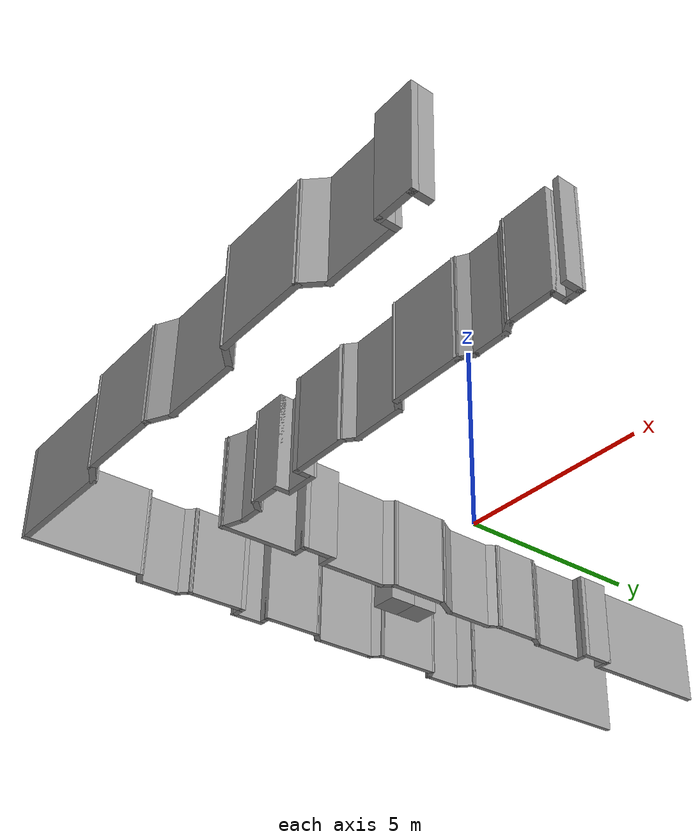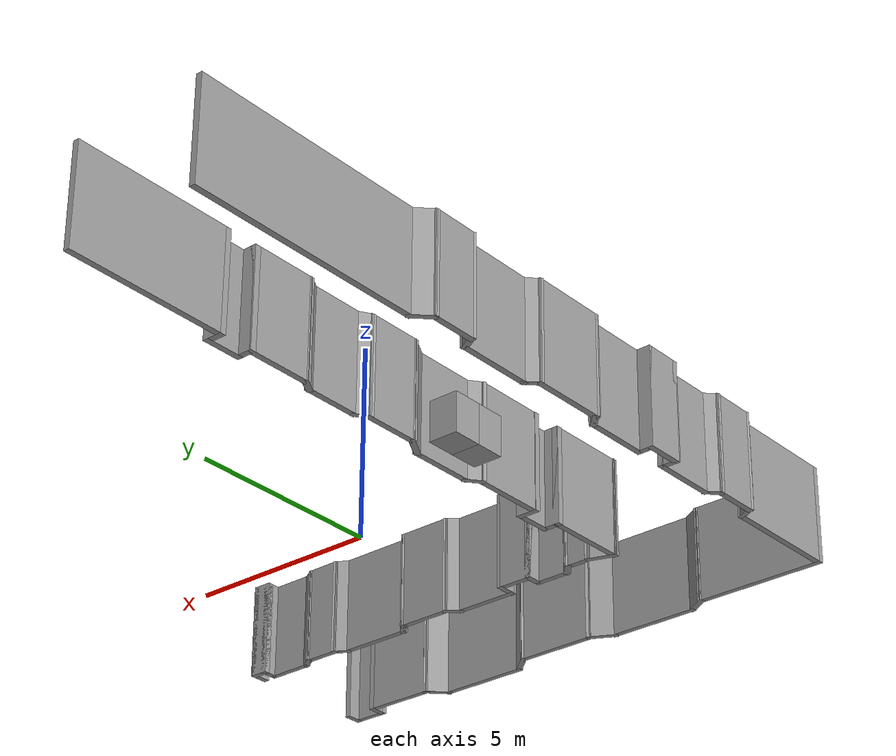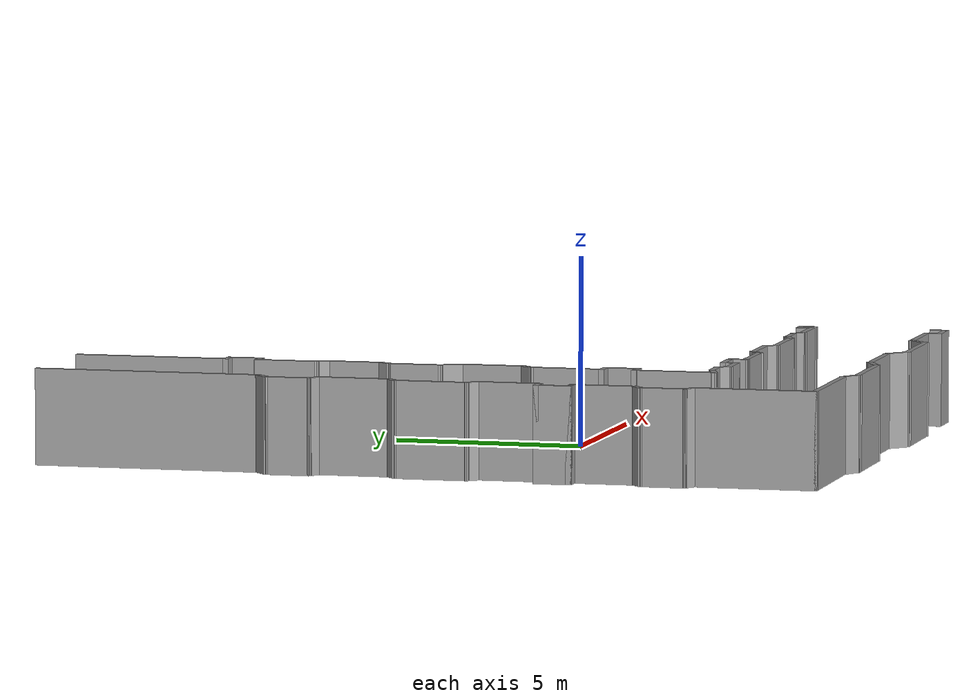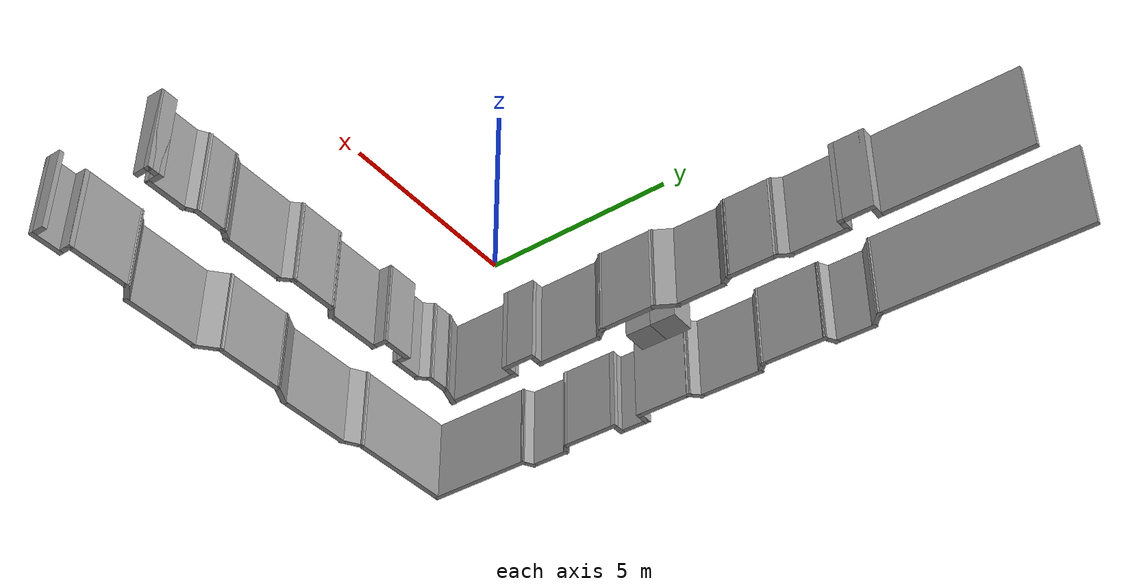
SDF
<?xml version='1.0'?>
<sdf version='1.6'>
  <model name='use_case1'>
    <pose frame=''>-0.101071 0.092078 0 0 -0 0</pose>
    <link name='Wall_11'>
      <collision name='Wall_11_Collision'>
        <geometry>
          <box>
            <size>0.5 0.15 2.5</size>
          </box>
        </geometry>
        <pose frame=''>0 0 1.25 0 -0 0</pose>
      </collision>
      <visual name='Wall_11_Visual'>
        <pose frame=''>0 0 1.25 0 -0 0</pose>
        <geometry>
          <box>
            <size>0.5 0.15 2.5</size>
          </box>
        </geometry>
        <material>
          <script>
            <uri>file://media/materials/scripts/gazebo.material</uri>
            <name>Gazebo/Grey</name>
          </script>
          <ambient>1 1 1 1</ambient>
        </material>
      </visual>
      <pose frame=''>7.6129 -4.52177 0 0 -0 1.5708</pose>
    </link>
    <link name='Wall_12'>
      <collision name='Wall_12_Collision'>
        <geometry>
          <box>
            <size>0.5 0.15 2.5</size>
          </box>
        </geometry>
        <pose frame=''>0 0 1.25 0 -0 0</pose>
      </collision>
      <visual name='Wall_12_Visual'>
        <pose frame=''>0 0 1.25 0 -0 0</pose>
        <geometry>
          <box>
            <size>0.5 0.15 2.5</size>
          </box>
        </geometry>
        <material>
          <script>
            <uri>file://media/materials/scripts/gazebo.material</uri>
            <name>Gazebo/Grey</name>
          </script>
          <ambient>1 1 1 1</ambient>
        </material>
      </visual>
      <pose frame=''>7.4379 -4.34677 0 0 -0 3.14159</pose>
    </link>
    <link name='Wall_13'>
      <collision name='Wall_13_Collision'>
        <geometry>
          <box>
            <size>0.5 0.15 2.5</size>
          </box>
        </geometry>
        <pose frame=''>0 0 1.25 0 -0 0</pose>
      </collision>
      <visual name='Wall_13_Visual'>
        <pose frame=''>0 0 1.25 0 -0 0</pose>
        <geometry>
          <box>
            <size>0.5 0.15 2.5</size>
          </box>
        </geometry>
        <material>
          <script>
            <uri>file://media/materials/scripts/gazebo.material</uri>
            <name>Gazebo/Grey</name>
          </script>
          <ambient>1 1 1 1</ambient>
        </material>
      </visual>
      <pose frame=''>7.2629 -4.52177 0 0 0 -1.5708</pose>
    </link>
    <link name='Wall_14'>
      <collision name='Wall_14_Collision'>
        <geometry>
          <box>
            <size>1.25 0.15 2.5</size>
          </box>
        </geometry>
        <pose frame=''>0 0 1.25 0 -0 0</pose>
      </collision>
      <visual name='Wall_14_Visual'>
        <pose frame=''>0 0 1.25 0 -0 0</pose>
        <geometry>
          <box>
            <size>1.25 0.15 2.5</size>
          </box>
        </geometry>
        <material>
          <script>
            <uri>file://media/materials/scripts/gazebo.material</uri>
            <name>Gazebo/Grey</name>
          </script>
          <ambient>1 1 1 1</ambient>
        </material>
      </visual>
      <pose frame=''>6.7129 -4.69677 0 0 -0 3.14159</pose>
    </link>
    <link name='Wall_15'>
      <collision name='Wall_15_Collision'>
        <geometry>
          <box>
            <size>0.5 0.15 2.5</size>
          </box>
        </geometry>
        <pose frame=''>0 0 1.25 0 -0 0</pose>
      </collision>
      <visual name='Wall_15_Visual'>
        <pose frame=''>0 0 1.25 0 -0 0</pose>
        <geometry>
          <box>
            <size>0.5 0.15 2.5</size>
          </box>
        </geometry>
        <material>
          <script>
            <uri>file://media/materials/scripts/gazebo.material</uri>
            <name>Gazebo/Grey</name>
          </script>
          <ambient>1 1 1 1</ambient>
        </material>
      </visual>
      <pose frame=''>6.01134 -4.60927 0 0 -0 2.61799</pose>
    </link>
    <link name='Wall_16'>
      <collision name='Wall_16_Collision'>
        <geometry>
          <box>
            <size>1 0.15 2.5</size>
          </box>
        </geometry>
        <pose frame=''>0 0 1.25 0 -0 0</pose>
      </collision>
      <visual name='Wall_16_Visual'>
        <pose frame=''>0 0 1.25 0 -0 0</pose>
        <geometry>
          <box>
            <size>1 0.15 2.5</size>
          </box>
        </geometry>
        <material>
          <script>
            <uri>file://media/materials/scripts/gazebo.material</uri>
            <name>Gazebo/Grey</name>
          </script>
          <ambient>1 1 1 1</ambient>
        </material>
      </visual>
      <pose frame=''>5.43479 -4.52177 0 0 -0 3.14159</pose>
    </link>
    <link name='Wall_17'>
      <collision name='Wall_17_Collision'>
        <geometry>
          <box>
            <size>0.5 0.15 2.5</size>
          </box>
        </geometry>
        <pose frame=''>0 0 1.25 0 -0 0</pose>
      </collision>
      <visual name='Wall_17_Visual'>
        <pose frame=''>0 0 1.25 0 -0 0</pose>
        <geometry>
          <box>
            <size>0.5 0.15 2.5</size>
          </box>
        </geometry>
        <material>
          <script>
            <uri>file://media/materials/scripts/gazebo.material</uri>
            <name>Gazebo/Grey</name>
          </script>
          <ambient>1 1 1 1</ambient>
        </material>
      </visual>
      <pose frame=''>4.85823 -4.60927 0 0 0 -2.61799</pose>
    </link>
    <link name='Wall_18'>
      <collision name='Wall_18_Collision'>
        <geometry>
          <box>
            <size>2 0.15 2.5</size>
          </box>
        </geometry>
        <pose frame=''>0 0 1.25 0 -0 0</pose>
      </collision>
      <visual name='Wall_18_Visual'>
        <pose frame=''>0 0 1.25 0 -0 0</pose>
        <geometry>
          <box>
            <size>2 0.15 2.5</size>
          </box>
        </geometry>
        <material>
          <script>
            <uri>file://media/materials/scripts/gazebo.material</uri>
            <name>Gazebo/Grey</name>
          </script>
          <ambient>1 1 1 1</ambient>
        </material>
      </visual>
      <pose frame=''>3.78168 -4.69677 0 0 -0 3.14159</pose>
    </link>
    <link name='Wall_19'>
      <collision name='Wall_19_Collision'>
        <geometry>
          <box>
            <size>0.5 0.15 2.5</size>
          </box>
        </geometry>
        <pose frame=''>0 0 1.25 0 -0 0</pose>
      </collision>
      <visual name='Wall_19_Visual'>
        <pose frame=''>0 0 1.25 0 -0 0</pose>
        <geometry>
          <box>
            <size>0.5 0.15 2.5</size>
          </box>
        </geometry>
        <material>
          <script>
            <uri>file://media/materials/scripts/gazebo.material</uri>
            <name>Gazebo/Grey</name>
          </script>
          <ambient>1 1 1 1</ambient>
        </material>
      </visual>
      <pose frame=''>2.73293 -4.57303 0 0 -0 2.35619</pose>
    </link>
    <link name='Wall_20'>
      <collision name='Wall_20_Collision'>
        <geometry>
          <box>
            <size>1.5 0.15 2.5</size>
          </box>
        </geometry>
        <pose frame=''>0 0 1.25 0 -0 0</pose>
      </collision>
      <visual name='Wall_20_Visual'>
        <pose frame=''>0 0 1.25 0 -0 0</pose>
        <geometry>
          <box>
            <size>1.5 0.15 2.5</size>
          </box>
        </geometry>
        <material>
          <script>
            <uri>file://media/materials/scripts/gazebo.material</uri>
            <name>Gazebo/Grey</name>
          </script>
          <ambient>1 1 1 1</ambient>
        </material>
      </visual>
      <pose frame=''>1.93419 -4.44928 0 0 -0 3.14159</pose>
    </link>
    <link name='Wall_21'>
      <collision name='Wall_21_Collision'>
        <geometry>
          <box>
            <size>0.522162 0.15 2.5</size>
          </box>
        </geometry>
        <pose frame=''>0 0 1.25 0 -0 0</pose>
      </collision>
      <visual name='Wall_21_Visual'>
        <pose frame=''>0 0 1.25 0 -0 0</pose>
        <geometry>
          <box>
            <size>0.522162 0.15 2.5</size>
          </box>
        </geometry>
        <material>
          <script>
            <uri>file://media/materials/scripts/gazebo.material</uri>
            <name>Gazebo/Grey</name>
          </script>
          <ambient>1 1 1 1</ambient>
        </material>
      </visual>
      <pose frame=''>1.11524 -4.5672 0 0 0 -2.45528</pose>
    </link>
    <link name='Wall_22'>
      <collision name='Wall_22_Collision'>
        <geometry>
          <box>
            <size>1.75 0.15 2.5</size>
          </box>
        </geometry>
        <pose frame=''>0 0 1.25 0 -0 0</pose>
      </collision>
      <visual name='Wall_22_Visual'>
        <pose frame=''>0 0 1.25 0 -0 0</pose>
        <geometry>
          <box>
            <size>1.75 0.15 2.5</size>
          </box>
        </geometry>
        <material>
          <script>
            <uri>file://media/materials/scripts/gazebo.material</uri>
            <name>Gazebo/Grey</name>
          </script>
          <ambient>1 1 1 1</ambient>
        </material>
      </visual>
      <pose frame=''>0.17129 -4.66991 0 0 -0 3.14159</pose>
    </link>
    <link name='Wall_23'>
      <collision name='Wall_23_Collision'>
        <geometry>
          <box>
            <size>0.561116 0.15 2.5</size>
          </box>
        </geometry>
        <pose frame=''>0 0 1.25 0 -0 0</pose>
      </collision>
      <visual name='Wall_23_Visual'>
        <pose frame=''>0 0 1.25 0 -0 0</pose>
        <geometry>
          <box>
            <size>0.561116 0.15 2.5</size>
          </box>
        </geometry>
        <material>
          <script>
            <uri>file://media/materials/scripts/gazebo.material</uri>
            <name>Gazebo/Grey</name>
          </script>
          <ambient>1 1 1 1</ambient>
        </material>
      </visual>
      <pose frame=''>-0.636314 -4.4797 0 0 -0 1.6078</pose>
    </link>
    <link name='Wall_24'>
      <collision name='Wall_24_Collision'>
        <geometry>
          <box>
            <size>1 0.15 2.5</size>
          </box>
        </geometry>
        <pose frame=''>0 0 1.25 0 -0 0</pose>
      </collision>
      <visual name='Wall_24_Visual'>
        <pose frame=''>0 0 1.25 0 -0 0</pose>
        <geometry>
          <box>
            <size>1 0.15 2.5</size>
          </box>
        </geometry>
        <material>
          <script>
            <uri>file://media/materials/scripts/gazebo.material</uri>
            <name>Gazebo/Grey</name>
          </script>
          <ambient>1 1 1 1</ambient>
        </material>
      </visual>
      <pose frame=''>-1.06892 -4.27428 0 0 -0 3.14159</pose>
    </link>
    <link name='Wall_25'>
      <collision name='Wall_25_Collision'>
        <geometry>
          <box>
            <size>0.5 0.15 2.5</size>
          </box>
        </geometry>
        <pose frame=''>0 0 1.25 0 -0 0</pose>
      </collision>
      <visual name='Wall_25_Visual'>
        <pose frame=''>0 0 1.25 0 -0 0</pose>
        <geometry>
          <box>
            <size>0.5 0.15 2.5</size>
          </box>
        </geometry>
        <material>
          <script>
            <uri>file://media/materials/scripts/gazebo.material</uri>
            <name>Gazebo/Grey</name>
          </script>
          <ambient>1 1 1 1</ambient>
        </material>
      </visual>
      <pose frame=''>-1.49392 -4.44928 0 0 0 -1.5708</pose>
    </link>
    <link name='Wall_26'>
      <collision name='Wall_26_Collision'>
        <geometry>
          <box>
            <size>1 0.15 2.5</size>
          </box>
        </geometry>
        <pose frame=''>0 0 1.25 0 -0 0</pose>
      </collision>
      <visual name='Wall_26_Visual'>
        <pose frame=''>0 0 1.25 0 -0 0</pose>
        <geometry>
          <box>
            <size>1 0.15 2.5</size>
          </box>
        </geometry>
        <material>
          <script>
            <uri>file://media/materials/scripts/gazebo.material</uri>
            <name>Gazebo/Grey</name>
          </script>
          <ambient>1 1 1 1</ambient>
        </material>
      </visual>
      <pose frame=''>-1.91892 -4.62428 0 0 -0 3.14159</pose>
    </link>
    <link name='Wall_27'>
      <collision name='Wall_27_Collision'>
        <geometry>
          <box>
            <size>0.5 0.15 2.5</size>
          </box>
        </geometry>
        <pose frame=''>0 0 1.25 0 -0 0</pose>
      </collision>
      <visual name='Wall_27_Visual'>
        <pose frame=''>0 0 1.25 0 -0 0</pose>
        <geometry>
          <box>
            <size>0.5 0.15 2.5</size>
          </box>
        </geometry>
        <material>
          <script>
            <uri>file://media/materials/scripts/gazebo.material</uri>
            <name>Gazebo/Grey</name>
          </script>
          <ambient>1 1 1 1</ambient>
        </material>
      </visual>
      <pose frame=''>-2.46766 -4.50054 0 0 -0 2.35619</pose>
    </link>
    <link name='Wall_28'>
      <collision name='Wall_28_Collision'>
        <geometry>
          <box>
            <size>0.75 0.15 2.5</size>
          </box>
        </geometry>
        <pose frame=''>0 0 1.25 0 -0 0</pose>
      </collision>
      <visual name='Wall_28_Visual'>
        <pose frame=''>0 0 1.25 0 -0 0</pose>
        <geometry>
          <box>
            <size>0.75 0.15 2.5</size>
          </box>
        </geometry>
        <material>
          <script>
            <uri>file://media/materials/scripts/gazebo.material</uri>
            <name>Gazebo/Grey</name>
          </script>
          <ambient>1 1 1 1</ambient>
        </material>
      </visual>
      <pose frame=''>-2.89141 -4.3768 0 0 -0 3.14159</pose>
    </link>
    <link name='Wall_29'>
      <collision name='Wall_29_Collision'>
        <geometry>
          <box>
            <size>0.783629 0.15 2.5</size>
          </box>
        </geometry>
        <pose frame=''>0 0 1.25 0 -0 0</pose>
      </collision>
      <visual name='Wall_29_Visual'>
        <pose frame=''>0 0 1.25 0 -0 0</pose>
        <geometry>
          <box>
            <size>0.783629 0.15 2.5</size>
          </box>
        </geometry>
        <material>
          <script>
            <uri>file://media/materials/scripts/gazebo.material</uri>
            <name>Gazebo/Grey</name>
          </script>
          <ambient>1 1 1 1</ambient>
        </material>
      </visual>
      <pose frame=''>-3.49211 -4.47654 0 0 0 -2.82132</pose>
    </link>
    <link name='Wall_30'>
      <collision name='Wall_30_Collision'>
        <geometry>
          <box>
            <size>0.15 0.15 2.5</size>
          </box>
        </geometry>
        <pose frame=''>0 0 1.25 0 -0 0</pose>
      </collision>
      <visual name='Wall_30_Visual'>
        <pose frame=''>0 0 1.25 0 -0 0</pose>
        <geometry>
          <box>
            <size>0.15 0.15 2.5</size>
          </box>
        </geometry>
        <material>
          <script>
            <uri>file://media/materials/scripts/gazebo.material</uri>
            <name>Gazebo/Grey</name>
          </script>
          <ambient>1 1 1 1</ambient>
        </material>
      </visual>
      <pose frame=''>-3.79282 -4.57628 0 0 -0 0</pose>
    </link>
    <link name='Wall_32'>
      <collision name='Wall_32_Collision'>
        <geometry>
          <box>
            <size>0.5 0.15 2.5</size>
          </box>
        </geometry>
        <pose frame=''>0 0 1.25 0 -0 0</pose>
      </collision>
      <visual name='Wall_32_Visual'>
        <pose frame=''>0 0 1.25 0 -0 0</pose>
        <geometry>
          <box>
            <size>0.5 0.15 2.5</size>
          </box>
        </geometry>
        <material>
          <script>
            <uri>file://media/materials/scripts/gazebo.material</uri>
            <name>Gazebo/Grey</name>
          </script>
          <ambient>1 1 1 1</ambient>
        </material>
      </visual>
      <pose frame=''>7.62781 -8.12233 0 0 0 -1.5708</pose>
    </link>
    <link name='Wall_33'>
      <collision name='Wall_33_Collision'>
        <geometry>
          <box>
            <size>1 0.15 2.5</size>
          </box>
        </geometry>
        <pose frame=''>0 0 1.25 0 -0 0</pose>
      </collision>
      <visual name='Wall_33_Visual'>
        <pose frame=''>0 0 1.25 0 -0 0</pose>
        <geometry>
          <box>
            <size>1 0.15 2.5</size>
          </box>
        </geometry>
        <material>
          <script>
            <uri>file://media/materials/scripts/gazebo.material</uri>
            <name>Gazebo/Grey</name>
          </script>
          <ambient>1 1 1 1</ambient>
        </material>
      </visual>
      <pose frame=''>7.20281 -8.29734 0 0 -0 3.14159</pose>
    </link>
    <link name='Wall_34'>
      <collision name='Wall_34_Collision'>
        <geometry>
          <box>
            <size>0.5 0.15 2.5</size>
          </box>
        </geometry>
        <pose frame=''>0 0 1.25 0 -0 0</pose>
      </collision>
      <visual name='Wall_34_Visual'>
        <pose frame=''>0 0 1.25 0 -0 0</pose>
        <geometry>
          <box>
            <size>0.5 0.15 2.5</size>
          </box>
        </geometry>
        <material>
          <script>
            <uri>file://media/materials/scripts/gazebo.material</uri>
            <name>Gazebo/Grey</name>
          </script>
          <ambient>1 1 1 1</ambient>
        </material>
      </visual>
      <pose frame=''>6.77781 -8.12233 0 0 -0 1.5708</pose>
    </link>
    <link name='Wall_35'>
      <collision name='Wall_35_Collision'>
        <geometry>
          <box>
            <size>2 0.15 2.5</size>
          </box>
        </geometry>
        <pose frame=''>0 0 1.25 0 -0 0</pose>
      </collision>
      <visual name='Wall_35_Visual'>
        <pose frame=''>0 0 1.25 0 -0 0</pose>
        <geometry>
          <box>
            <size>2 0.15 2.5</size>
          </box>
        </geometry>
        <material>
          <script>
            <uri>file://media/materials/scripts/gazebo.material</uri>
            <name>Gazebo/Grey</name>
          </script>
          <ambient>1 1 1 1</ambient>
        </material>
      </visual>
      <pose frame=''>5.85281 -7.94733 0 0 -0 3.14159</pose>
    </link>
    <link name='Wall_36'>
      <collision name='Wall_36_Collision'>
        <geometry>
          <box>
            <size>0.75 0.15 2.5</size>
          </box>
        </geometry>
        <pose frame=''>0 0 1.25 0 -0 0</pose>
      </collision>
      <visual name='Wall_36_Visual'>
        <pose frame=''>0 0 1.25 0 -0 0</pose>
        <geometry>
          <box>
            <size>0.75 0.15 2.5</size>
          </box>
        </geometry>
        <material>
          <script>
            <uri>file://media/materials/scripts/gazebo.material</uri>
            <name>Gazebo/Grey</name>
          </script>
          <ambient>1 1 1 1</ambient>
        </material>
      </visual>
      <pose frame=''>4.71568 -8.15947 0 0 0 -2.35619</pose>
    </link>
    <link name='Wall_37'>
      <collision name='Wall_37_Collision'>
        <geometry>
          <box>
            <size>2.5 0.15 2.5</size>
          </box>
        </geometry>
        <pose frame=''>0 0 1.25 0 -0 0</pose>
      </collision>
      <visual name='Wall_37_Visual'>
        <pose frame=''>0 0 1.25 0 -0 0</pose>
        <geometry>
          <box>
            <size>2.5 0.15 2.5</size>
          </box>
        </geometry>
        <material>
          <script>
            <uri>file://media/materials/scripts/gazebo.material</uri>
            <name>Gazebo/Grey</name>
          </script>
          <ambient>1 1 1 1</ambient>
        </material>
      </visual>
      <pose frame=''>3.32855 -8.3716 0 0 -0 3.14159</pose>
    </link>
    <link name='Wall_38'>
      <collision name='Wall_38_Collision'>
        <geometry>
          <box>
            <size>0.834433 0.15 2.5</size>
          </box>
        </geometry>
        <pose frame=''>0 0 1.25 0 -0 0</pose>
      </collision>
      <visual name='Wall_38_Visual'>
        <pose frame=''>0 0 1.25 0 -0 0</pose>
        <geometry>
          <box>
            <size>0.834433 0.15 2.5</size>
          </box>
        </geometry>
        <material>
          <script>
            <uri>file://media/materials/scripts/gazebo.material</uri>
            <name>Gazebo/Grey</name>
          </script>
          <ambient>1 1 1 1</ambient>
        </material>
      </visual>
      <pose frame=''>1.89374 -8.14886 0 0 -0 2.43287</pose>
    </link>
    <link name='Wall_39'>
      <collision name='Wall_39_Collision'>
        <geometry>
          <box>
            <size>2.25 0.15 2.5</size>
          </box>
        </geometry>
        <pose frame=''>0 0 1.25 0 -0 0</pose>
      </collision>
      <visual name='Wall_39_Visual'>
        <pose frame=''>0 0 1.25 0 -0 0</pose>
        <geometry>
          <box>
            <size>2.25 0.15 2.5</size>
          </box>
        </geometry>
        <material>
          <script>
            <uri>file://media/materials/scripts/gazebo.material</uri>
            <name>Gazebo/Grey</name>
          </script>
          <ambient>1 1 1 1</ambient>
        </material>
      </visual>
      <pose frame=''>0.583932 -7.93935 0 0 -0 3.14159</pose>
    </link>
    <link name='Wall_40'>
      <collision name='Wall_40_Collision'>
        <geometry>
          <box>
            <size>0.802951 0.15 2.5</size>
          </box>
        </geometry>
        <pose frame=''>0 0 1.25 0 -0 0</pose>
      </collision>
      <visual name='Wall_40_Visual'>
        <pose frame=''>0 0 1.25 0 -0 0</pose>
        <geometry>
          <box>
            <size>0.802951 0.15 2.5</size>
          </box>
        </geometry>
        <material>
          <script>
            <uri>file://media/materials/scripts/gazebo.material</uri>
            <name>Gazebo/Grey</name>
          </script>
          <ambient>1 1 1 1</ambient>
        </material>
      </visual>
      <pose frame=''>-0.755846 -8.07651 0 0 0 -2.66289</pose>
    </link>
    <link name='Wall_41'>
      <collision name='Wall_41_Collision'>
        <geometry>
          <box>
            <size>2.5 0.15 2.5</size>
          </box>
        </geometry>
        <pose frame=''>0 0 1.25 0 -0 0</pose>
      </collision>
      <visual name='Wall_41_Visual'>
        <pose frame=''>0 0 1.25 0 -0 0</pose>
        <geometry>
          <box>
            <size>2.5 0.15 2.5</size>
          </box>
        </geometry>
        <material>
          <script>
            <uri>file://media/materials/scripts/gazebo.material</uri>
            <name>Gazebo/Grey</name>
          </script>
          <ambient>1 1 1 1</ambient>
        </material>
      </visual>
      <pose frame=''>-2.22062 -8.22689 0 0 -0 3.14159</pose>
    </link>
    <link name='Wall_42'>
      <collision name='Wall_42_Collision'>
        <geometry>
          <box>
            <size>0.702509 0.15 2.5</size>
          </box>
        </geometry>
        <pose frame=''>0 0 1.25 0 -0 0</pose>
      </collision>
      <visual name='Wall_42_Visual'>
        <pose frame=''>0 0 1.25 0 -0 0</pose>
        <geometry>
          <box>
            <size>0.702509 0.15 2.5</size>
          </box>
        </geometry>
        <material>
          <script>
            <uri>file://media/materials/scripts/gazebo.material</uri>
            <name>Gazebo/Grey</name>
          </script>
          <ambient>1 1 1 1</ambient>
        </material>
      </visual>
      <pose frame=''>-3.63391 -8.08711 0 0 -0 2.61108</pose>
    </link>
    <link name='Wall_43'>
      <collision name='Wall_43_Collision'>
        <geometry>
          <box>
            <size>3.5 0.15 2.5</size>
          </box>
        </geometry>
        <pose frame=''>0 0 1.25 0 -0 0</pose>
      </collision>
      <visual name='Wall_43_Visual'>
        <pose frame=''>0 0 1.25 0 -0 0</pose>
        <geometry>
          <box>
            <size>3.5 0.15 2.5</size>
          </box>
        </geometry>
        <material>
          <script>
            <uri>file://media/materials/scripts/gazebo.material</uri>
            <name>Gazebo/Grey</name>
          </script>
          <ambient>1 1 1 1</ambient>
        </material>
      </visual>
      <pose frame=''>-5.54719 -7.94733 0 0 -0 3.14159</pose>
    </link>
    <link name='Wall_44'>
      <collision name='Wall_44_Collision'>
        <geometry>
          <box>
            <size>3.25 0.15 2.5</size>
          </box>
        </geometry>
        <pose frame=''>0 0 1.25 0 -0 0</pose>
      </collision>
      <visual name='Wall_44_Visual'>
        <pose frame=''>0 0 1.25 0 -0 0</pose>
        <geometry>
          <box>
            <size>3.25 0.15 2.5</size>
          </box>
        </geometry>
        <material>
          <script>
            <uri>file://media/materials/scripts/gazebo.material</uri>
            <name>Gazebo/Grey</name>
          </script>
          <ambient>1 1 1 1</ambient>
        </material>
      </visual>
      <pose frame=''>-7.22219 -6.39733 0 0 -0 1.5708</pose>
    </link>
    <link name='Wall_45'>
      <collision name='Wall_45_Collision'>
        <geometry>
          <box>
            <size>0.5 0.15 2.5</size>
          </box>
        </geometry>
        <pose frame=''>0 0 1.25 0 -0 0</pose>
      </collision>
      <visual name='Wall_45_Visual'>
        <pose frame=''>0 0 1.25 0 -0 0</pose>
        <geometry>
          <box>
            <size>0.5 0.15 2.5</size>
          </box>
        </geometry>
        <material>
          <script>
            <uri>file://media/materials/scripts/gazebo.material</uri>
            <name>Gazebo/Grey</name>
          </script>
          <ambient>1 1 1 1</ambient>
        </material>
      </visual>
      <pose frame=''>-7.37374 -4.75983 0 0 -0 2.61799</pose>
    </link>
    <link name='Wall_46'>
      <collision name='Wall_46_Collision'>
        <geometry>
          <box>
            <size>1.25 0.15 2.5</size>
          </box>
        </geometry>
        <pose frame=''>0 0 1.25 0 -0 0</pose>
      </collision>
      <visual name='Wall_46_Visual'>
        <pose frame=''>0 0 1.25 0 -0 0</pose>
        <geometry>
          <box>
            <size>1.25 0.15 2.5</size>
          </box>
        </geometry>
        <material>
          <script>
            <uri>file://media/materials/scripts/gazebo.material</uri>
            <name>Gazebo/Grey</name>
          </script>
          <ambient>1 1 1 1</ambient>
        </material>
      </visual>
      <pose frame=''>-7.5253 -4.12233 0 0 -0 1.5708</pose>
    </link>
    <link name='Wall_47'>
      <collision name='Wall_47_Collision'>
        <geometry>
          <box>
            <size>0.5 0.15 2.5</size>
          </box>
        </geometry>
        <pose frame=''>0 0 1.25 0 -0 0</pose>
      </collision>
      <visual name='Wall_47_Visual'>
        <pose frame=''>0 0 1.25 0 -0 0</pose>
        <geometry>
          <box>
            <size>0.5 0.15 2.5</size>
          </box>
        </geometry>
        <material>
          <script>
            <uri>file://media/materials/scripts/gazebo.material</uri>
            <name>Gazebo/Grey</name>
          </script>
          <ambient>1 1 1 1</ambient>
        </material>
      </visual>
      <pose frame=''>-7.40155 -3.44859 0 0 -0 0.785398</pose>
    </link>
    <link name='Wall_48'>
      <collision name='Wall_48_Collision'>
        <geometry>
          <box>
            <size>1.75 0.15 2.5</size>
          </box>
        </geometry>
        <pose frame=''>0 0 1.25 0 -0 0</pose>
      </collision>
      <visual name='Wall_48_Visual'>
        <pose frame=''>0 0 1.25 0 -0 0</pose>
        <geometry>
          <box>
            <size>1.75 0.15 2.5</size>
          </box>
        </geometry>
        <material>
          <script>
            <uri>file://media/materials/scripts/gazebo.material</uri>
            <name>Gazebo/Grey</name>
          </script>
          <ambient>1 1 1 1</ambient>
        </material>
      </visual>
      <pose frame=''>-7.27781 -2.52485 0 0 -0 1.5708</pose>
    </link>
    <link name='Wall_49'>
      <collision name='Wall_49_Collision'>
        <geometry>
          <box>
            <size>0.5 0.15 2.5</size>
          </box>
        </geometry>
        <pose frame=''>0 0 1.25 0 -0 0</pose>
      </collision>
      <visual name='Wall_49_Visual'>
        <pose frame=''>0 0 1.25 0 -0 0</pose>
        <geometry>
          <box>
            <size>0.5 0.15 2.5</size>
          </box>
        </geometry>
        <material>
          <script>
            <uri>file://media/materials/scripts/gazebo.material</uri>
            <name>Gazebo/Grey</name>
          </script>
          <ambient>1 1 1 1</ambient>
        </material>
      </visual>
      <pose frame=''>-7.45281 -1.72485 0 0 -0 3.14159</pose>
    </link>
    <link name='Wall_51'>
      <collision name='Wall_51_Collision'>
        <geometry>
          <box>
            <size>1 0.15 2.5</size>
          </box>
        </geometry>
        <pose frame=''>0 0 1.25 0 -0 0</pose>
      </collision>
      <visual name='Wall_51_Visual'>
        <pose frame=''>0 0 1.25 0 -0 0</pose>
        <geometry>
          <box>
            <size>1 0.15 2.5</size>
          </box>
        </geometry>
        <material>
          <script>
            <uri>file://media/materials/scripts/gazebo.material</uri>
            <name>Gazebo/Grey</name>
          </script>
          <ambient>1 1 1 1</ambient>
        </material>
      </visual>
      <pose frame=''>-7.62781 -1.29985 0 0 -0 1.5708</pose>
    </link>
    <link name='Wall_52'>
      <collision name='Wall_52_Collision'>
        <geometry>
          <box>
            <size>0.5 0.15 2.5</size>
          </box>
        </geometry>
        <pose frame=''>0 0 1.25 0 -0 0</pose>
      </collision>
      <visual name='Wall_52_Visual'>
        <pose frame=''>0 0 1.25 0 -0 0</pose>
        <geometry>
          <box>
            <size>0.5 0.15 2.5</size>
          </box>
        </geometry>
        <material>
          <script>
            <uri>file://media/materials/scripts/gazebo.material</uri>
            <name>Gazebo/Grey</name>
          </script>
          <ambient>1 1 1 1</ambient>
        </material>
      </visual>
      <pose frame=''>-7.45281 -0.874848 0 0 -0 0</pose>
    </link>
    <link name='Wall_53'>
      <collision name='Wall_53_Collision'>
        <geometry>
          <box>
            <size>1.75 0.15 2.5</size>
          </box>
        </geometry>
        <pose frame=''>0 0 1.25 0 -0 0</pose>
      </collision>
      <visual name='Wall_53_Visual'>
        <pose frame=''>0 0 1.25 0 -0 0</pose>
        <geometry>
          <box>
            <size>1.75 0.15 2.5</size>
          </box>
        </geometry>
        <material>
          <script>
            <uri>file://media/materials/scripts/gazebo.material</uri>
            <name>Gazebo/Grey</name>
          </script>
          <ambient>1 1 1 1</ambient>
        </material>
      </visual>
      <pose frame=''>-7.27781 -0.074848 0 0 -0 1.5708</pose>
    </link>
    <link name='Wall_54'>
      <collision name='Wall_54_Collision'>
        <geometry>
          <box>
            <size>0.5 0.15 2.5</size>
          </box>
        </geometry>
        <pose frame=''>0 0 1.25 0 -0 0</pose>
      </collision>
      <visual name='Wall_54_Visual'>
        <pose frame=''>0 0 1.25 0 -0 0</pose>
        <geometry>
          <box>
            <size>0.5 0.15 2.5</size>
          </box>
        </geometry>
        <material>
          <script>
            <uri>file://media/materials/scripts/gazebo.material</uri>
            <name>Gazebo/Grey</name>
          </script>
          <ambient>1 1 1 1</ambient>
        </material>
      </visual>
      <pose frame=''>-7.40155 0.848896 0 0 -0 2.35619</pose>
    </link>
    <link name='Wall_55'>
      <collision name='Wall_55_Collision'>
        <geometry>
          <box>
            <size>2 0.15 2.5</size>
          </box>
        </geometry>
        <pose frame=''>0 0 1.25 0 -0 0</pose>
      </collision>
      <visual name='Wall_55_Visual'>
        <pose frame=''>0 0 1.25 0 -0 0</pose>
        <geometry>
          <box>
            <size>2 0.15 2.5</size>
          </box>
        </geometry>
        <material>
          <script>
            <uri>file://media/materials/scripts/gazebo.material</uri>
            <name>Gazebo/Grey</name>
          </script>
          <ambient>1 1 1 1</ambient>
        </material>
      </visual>
      <pose frame=''>-7.5253 1.89764 0 0 -0 1.5708</pose>
    </link>
    <link name='Wall_56'>
      <collision name='Wall_56_Collision'>
        <geometry>
          <box>
            <size>0.5 0.15 2.5</size>
          </box>
        </geometry>
        <pose frame=''>0 0 1.25 0 -0 0</pose>
      </collision>
      <visual name='Wall_56_Visual'>
        <pose frame=''>0 0 1.25 0 -0 0</pose>
        <geometry>
          <box>
            <size>0.5 0.15 2.5</size>
          </box>
        </geometry>
        <material>
          <script>
            <uri>file://media/materials/scripts/gazebo.material</uri>
            <name>Gazebo/Grey</name>
          </script>
          <ambient>1 1 1 1</ambient>
        </material>
      </visual>
      <pose frame=''>-7.40155 2.94638 0 0 -0 0.785398</pose>
    </link>
    <link name='Wall_57'>
      <collision name='Wall_57_Collision'>
        <geometry>
          <box>
            <size>2 0.15 2.5</size>
          </box>
        </geometry>
        <pose frame=''>0 0 1.25 0 -0 0</pose>
      </collision>
      <visual name='Wall_57_Visual'>
        <pose frame=''>0 0 1.25 0 -0 0</pose>
        <geometry>
          <box>
            <size>2 0.15 2.5</size>
          </box>
        </geometry>
        <material>
          <script>
            <uri>file://media/materials/scripts/gazebo.material</uri>
            <name>Gazebo/Grey</name>
          </script>
          <ambient>1 1 1 1</ambient>
        </material>
      </visual>
      <pose frame=''>-7.27781 3.99513 0 0 -0 1.5708</pose>
    </link>
    <link name='Wall_58'>
      <collision name='Wall_58_Collision'>
        <geometry>
          <box>
            <size>0.5 0.15 2.5</size>
          </box>
        </geometry>
        <pose frame=''>0 0 1.25 0 -0 0</pose>
      </collision>
      <visual name='Wall_58_Visual'>
        <pose frame=''>0 0 1.25 0 -0 0</pose>
        <geometry>
          <box>
            <size>0.5 0.15 2.5</size>
          </box>
        </geometry>
        <material>
          <script>
            <uri>file://media/materials/scripts/gazebo.material</uri>
            <name>Gazebo/Grey</name>
          </script>
          <ambient>1 1 1 1</ambient>
        </material>
      </visual>
      <pose frame=''>-7.42936 5.00763 0 0 -0 2.61799</pose>
    </link>
    <link name='Wall_59'>
      <collision name='Wall_59_Collision'>
        <geometry>
          <box>
            <size>1.25 0.15 2.5</size>
          </box>
        </geometry>
        <pose frame=''>0 0 1.25 0 -0 0</pose>
      </collision>
      <visual name='Wall_59_Visual'>
        <pose frame=''>0 0 1.25 0 -0 0</pose>
        <geometry>
          <box>
            <size>1.25 0.15 2.5</size>
          </box>
        </geometry>
        <material>
          <script>
            <uri>file://media/materials/scripts/gazebo.material</uri>
            <name>Gazebo/Grey</name>
          </script>
          <ambient>1 1 1 1</ambient>
        </material>
      </visual>
      <pose frame=''>-7.58092 5.64513 0 0 -0 1.5708</pose>
    </link>
    <link name='Wall_60'>
      <collision name='Wall_60_Collision'>
        <geometry>
          <box>
            <size>0.656479 0.15 2.5</size>
          </box>
        </geometry>
        <pose frame=''>0 0 1.25 0 -0 0</pose>
      </collision>
      <visual name='Wall_60_Visual'>
        <pose frame=''>0 0 1.25 0 -0 0</pose>
        <geometry>
          <box>
            <size>0.656479 0.15 2.5</size>
          </box>
        </geometry>
        <material>
          <script>
            <uri>file://media/materials/scripts/gazebo.material</uri>
            <name>Gazebo/Grey</name>
          </script>
          <ambient>1 1 1 1</ambient>
        </material>
      </visual>
      <pose frame=''>-7.40155 6.3739 0 0 -0 0.783733</pose>
    </link>
    <link name='Wall_61'>
      <collision name='Wall_61_Collision'>
        <geometry>
          <box>
            <size>6 0.15 2.5</size>
          </box>
        </geometry>
        <pose frame=''>0 0 1.25 0 -0 0</pose>
      </collision>
      <visual name='Wall_61_Visual'>
        <pose frame=''>0 0 1.25 0 -0 0</pose>
        <geometry>
          <box>
            <size>6 0.15 2.5</size>
          </box>
        </geometry>
        <material>
          <script>
            <uri>file://media/materials/scripts/gazebo.material</uri>
            <name>Gazebo/Grey</name>
          </script>
          <ambient>1 1 1 1</ambient>
        </material>
      </visual>
      <pose frame=''>-7.22219 9.47767 0 0 -0 1.5708</pose>
    </link>
    <link name='Wall_63'>
      <collision name='Wall_63_Collision'>
        <geometry>
          <box>
            <size>0.5 0.15 2.5</size>
          </box>
        </geometry>
        <pose frame=''>0 0 1.25 0 -0 0</pose>
      </collision>
      <visual name='Wall_63_Visual'>
        <pose frame=''>0 0 1.25 0 -0 0</pose>
        <geometry>
          <box>
            <size>0.5 0.15 2.5</size>
          </box>
        </geometry>
        <material>
          <script>
            <uri>file://media/materials/scripts/gazebo.material</uri>
            <name>Gazebo/Grey</name>
          </script>
          <ambient>1 1 1 1</ambient>
        </material>
      </visual>
      <pose frame=''>-3.69719 8.40267 0 0 -0 0</pose>
    </link>
    <link name='Wall_64'>
      <collision name='Wall_64_Collision'>
        <geometry>
          <box>
            <size>1 0.15 2.5</size>
          </box>
        </geometry>
        <pose frame=''>0 0 1.25 0 -0 0</pose>
      </collision>
      <visual name='Wall_64_Visual'>
        <pose frame=''>0 0 1.25 0 -0 0</pose>
        <geometry>
          <box>
            <size>1 0.15 2.5</size>
          </box>
        </geometry>
        <material>
          <script>
            <uri>file://media/materials/scripts/gazebo.material</uri>
            <name>Gazebo/Grey</name>
          </script>
          <ambient>1 1 1 1</ambient>
        </material>
      </visual>
      <pose frame=''>-3.52219 7.97766 0 0 0 -1.5708</pose>
    </link>
    <link name='Wall_65'>
      <collision name='Wall_65_Collision'>
        <geometry>
          <box>
            <size>0.5 0.15 2.5</size>
          </box>
        </geometry>
        <pose frame=''>0 0 1.25 0 -0 0</pose>
      </collision>
      <visual name='Wall_65_Visual'>
        <pose frame=''>0 0 1.25 0 -0 0</pose>
        <geometry>
          <box>
            <size>0.5 0.15 2.5</size>
          </box>
        </geometry>
        <material>
          <script>
            <uri>file://media/materials/scripts/gazebo.material</uri>
            <name>Gazebo/Grey</name>
          </script>
          <ambient>1 1 1 1</ambient>
        </material>
      </visual>
      <pose frame=''>-3.69719 7.55267 0 0 -0 3.14159</pose>
    </link>
    <link name='Wall_66'>
      <collision name='Wall_66_Collision'>
        <geometry>
          <box>
            <size>1.75 0.15 2.5</size>
          </box>
        </geometry>
        <pose frame=''>0 0 1.25 0 -0 0</pose>
      </collision>
      <visual name='Wall_66_Visual'>
        <pose frame=''>0 0 1.25 0 -0 0</pose>
        <geometry>
          <box>
            <size>1.75 0.15 2.5</size>
          </box>
        </geometry>
        <material>
          <script>
            <uri>file://media/materials/scripts/gazebo.material</uri>
            <name>Gazebo/Grey</name>
          </script>
          <ambient>1 1 1 1</ambient>
        </material>
      </visual>
      <pose frame=''>-3.87219 6.75267 0 0 0 -1.5708</pose>
    </link>
    <link name='Wall_67'>
      <collision name='Wall_67_Collision'>
        <geometry>
          <box>
            <size>0.5 0.15 2.5</size>
          </box>
        </geometry>
        <pose frame=''>0 0 1.25 0 -0 0</pose>
      </collision>
      <visual name='Wall_67_Visual'>
        <pose frame=''>0 0 1.25 0 -0 0</pose>
        <geometry>
          <box>
            <size>0.5 0.15 2.5</size>
          </box>
        </geometry>
        <material>
          <script>
            <uri>file://media/materials/scripts/gazebo.material</uri>
            <name>Gazebo/Grey</name>
          </script>
          <ambient>1 1 1 1</ambient>
        </material>
      </visual>
      <pose frame=''>-3.78469 5.80111 0 0 0 -1.0472</pose>
    </link>
    <link name='Wall_68'>
      <collision name='Wall_68_Collision'>
        <geometry>
          <box>
            <size>1.5 0.15 2.5</size>
          </box>
        </geometry>
        <pose frame=''>0 0 1.25 0 -0 0</pose>
      </collision>
      <visual name='Wall_68_Visual'>
        <pose frame=''>0 0 1.25 0 -0 0</pose>
        <geometry>
          <box>
            <size>1.5 0.15 2.5</size>
          </box>
        </geometry>
        <material>
          <script>
            <uri>file://media/materials/scripts/gazebo.material</uri>
            <name>Gazebo/Grey</name>
          </script>
          <ambient>1 1 1 1</ambient>
        </material>
      </visual>
      <pose frame=''>-3.69719 4.97456 0 0 0 -1.5708</pose>
    </link>
    <link name='Wall_69'>
      <collision name='Wall_69_Collision'>
        <geometry>
          <box>
            <size>0.5 0.15 2.5</size>
          </box>
        </geometry>
        <pose frame=''>0 0 1.25 0 -0 0</pose>
      </collision>
      <visual name='Wall_69_Visual'>
        <pose frame=''>0 0 1.25 0 -0 0</pose>
        <geometry>
          <box>
            <size>0.5 0.15 2.5</size>
          </box>
        </geometry>
        <material>
          <script>
            <uri>file://media/materials/scripts/gazebo.material</uri>
            <name>Gazebo/Grey</name>
          </script>
          <ambient>1 1 1 1</ambient>
        </material>
      </visual>
      <pose frame=''>-3.78469 4.148 0 0 0 -2.0944</pose>
    </link>
    <link name='Wall_70'>
      <collision name='Wall_70_Collision'>
        <geometry>
          <box>
            <size>1.5 0.15 2.5</size>
          </box>
        </geometry>
        <pose frame=''>0 0 1.25 0 -0 0</pose>
      </collision>
      <visual name='Wall_70_Visual'>
        <pose frame=''>0 0 1.25 0 -0 0</pose>
        <geometry>
          <box>
            <size>1.5 0.15 2.5</size>
          </box>
        </geometry>
        <material>
          <script>
            <uri>file://media/materials/scripts/gazebo.material</uri>
            <name>Gazebo/Grey</name>
          </script>
          <ambient>1 1 1 1</ambient>
        </material>
      </visual>
      <pose frame=''>-3.87219 3.32145 0 0 0 -1.5708</pose>
    </link>
    <link name='Wall_71'>
      <collision name='Wall_71_Collision'>
        <geometry>
          <box>
            <size>0.75 0.15 2.5</size>
          </box>
        </geometry>
        <pose frame=''>0 0 1.25 0 -0 0</pose>
      </collision>
      <visual name='Wall_71_Visual'>
        <pose frame=''>0 0 1.25 0 -0 0</pose>
        <geometry>
          <box>
            <size>0.75 0.15 2.5</size>
          </box>
        </geometry>
        <material>
          <script>
            <uri>file://media/materials/scripts/gazebo.material</uri>
            <name>Gazebo/Grey</name>
          </script>
          <ambient>1 1 1 1</ambient>
        </material>
      </visual>
      <pose frame=''>-3.72219 2.38664 0 0 0 -1.0472</pose>
    </link>
    <link name='Wall_72'>
      <collision name='Wall_72_Collision'>
        <geometry>
          <box>
            <size>1.75 0.15 2.5</size>
          </box>
        </geometry>
        <pose frame=''>0 0 1.25 0 -0 0</pose>
      </collision>
      <visual name='Wall_72_Visual'>
        <pose frame=''>0 0 1.25 0 -0 0</pose>
        <geometry>
          <box>
            <size>1.75 0.15 2.5</size>
          </box>
        </geometry>
        <material>
          <script>
            <uri>file://media/materials/scripts/gazebo.material</uri>
            <name>Gazebo/Grey</name>
          </script>
          <ambient>1 1 1 1</ambient>
        </material>
      </visual>
      <pose frame=''>-3.57219 1.32683 0 0 0 -1.5708</pose>
    </link>
    <link name='Wall_73'>
      <collision name='Wall_73_Collision'>
        <geometry>
          <box>
            <size>0.534048 0.15 2.5</size>
          </box>
        </geometry>
        <pose frame=''>0 0 1.25 0 -0 0</pose>
      </collision>
      <visual name='Wall_73_Visual'>
        <pose frame=''>0 0 1.25 0 -0 0</pose>
        <geometry>
          <box>
            <size>0.534048 0.15 2.5</size>
          </box>
        </geometry>
        <material>
          <script>
            <uri>file://media/materials/scripts/gazebo.material</uri>
            <name>Gazebo/Grey</name>
          </script>
          <ambient>1 1 1 1</ambient>
        </material>
      </visual>
      <pose frame=''>-3.69011 0.375277 0 0 0 -2.23201</pose>
    </link>
    <link name='Wall_74'>
      <collision name='Wall_74_Collision'>
        <geometry>
          <box>
            <size>2 0.15 2.5</size>
          </box>
        </geometry>
        <pose frame=''>0 0 1.25 0 -0 0</pose>
      </collision>
      <visual name='Wall_74_Visual'>
        <pose frame=''>0 0 1.25 0 -0 0</pose>
        <geometry>
          <box>
            <size>2 0.15 2.5</size>
          </box>
        </geometry>
        <material>
          <script>
            <uri>file://media/materials/scripts/gazebo.material</uri>
            <name>Gazebo/Grey</name>
          </script>
          <ambient>1 1 1 1</ambient>
        </material>
      </visual>
      <pose frame=''>-3.79282 -0.701277 0 0 0 -1.5708</pose>
    </link>
    <link name='Wall_75'>
      <collision name='Wall_75_Collision'>
        <geometry>
          <box>
            <size>0.560835 0.15 2.5</size>
          </box>
        </geometry>
        <pose frame=''>0 0 1.25 0 -0 0</pose>
      </collision>
      <visual name='Wall_75_Visual'>
        <pose frame=''>0 0 1.25 0 -0 0</pose>
        <geometry>
          <box>
            <size>0.560835 0.15 2.5</size>
          </box>
        </geometry>
        <material>
          <script>
            <uri>file://media/materials/scripts/gazebo.material</uri>
            <name>Gazebo/Grey</name>
          </script>
          <ambient>1 1 1 1</ambient>
        </material>
      </visual>
      <pose frame=''>-3.60261 -1.62628 0 0 -0 0</pose>
    </link>
    <link name='Wall_76'>
      <collision name='Wall_76_Collision'>
        <geometry>
          <box>
            <size>1 0.15 2.5</size>
          </box>
        </geometry>
        <pose frame=''>0 0 1.25 0 -0 0</pose>
      </collision>
      <visual name='Wall_76_Visual'>
        <pose frame=''>0 0 1.25 0 -0 0</pose>
        <geometry>
          <box>
            <size>1 0.15 2.5</size>
          </box>
        </geometry>
        <material>
          <script>
            <uri>file://media/materials/scripts/gazebo.material</uri>
            <name>Gazebo/Grey</name>
          </script>
          <ambient>1 1 1 1</ambient>
        </material>
      </visual>
      <pose frame=''>-3.39719 -2.05128 0 0 0 -1.5708</pose>
    </link>
    <link name='Wall_77'>
      <collision name='Wall_77_Collision'>
        <geometry>
          <box>
            <size>0.545626 0.15 2.5</size>
          </box>
        </geometry>
        <pose frame=''>0 0 1.25 0 -0 0</pose>
      </collision>
      <visual name='Wall_77_Visual'>
        <pose frame=''>0 0 1.25 0 -0 0</pose>
        <geometry>
          <box>
            <size>0.545626 0.15 2.5</size>
          </box>
        </geometry>
        <material>
          <script>
            <uri>file://media/materials/scripts/gazebo.material</uri>
            <name>Gazebo/Grey</name>
          </script>
          <ambient>1 1 1 1</ambient>
        </material>
      </visual>
      <pose frame=''>-3.595 -2.47628 0 0 -0 3.14159</pose>
    </link>
    <link name='Wall_78'>
      <collision name='Wall_78_Collision'>
        <geometry>
          <box>
            <size>2.25 0.15 2.5</size>
          </box>
        </geometry>
        <pose frame=''>0 0 1.25 0 -0 0</pose>
      </collision>
      <visual name='Wall_78_Visual'>
        <pose frame=''>0 0 1.25 0 -0 0</pose>
        <geometry>
          <box>
            <size>2.25 0.15 2.5</size>
          </box>
        </geometry>
        <material>
          <script>
            <uri>file://media/materials/scripts/gazebo.material</uri>
            <name>Gazebo/Grey</name>
          </script>
          <ambient>1 1 1 1</ambient>
        </material>
      </visual>
      <pose frame=''>-3.77761 -3.52628 0 0 0 -1.5708</pose>
    </link>
    <link name='Wall_79'>
      <collision name='Wall_79_Collision'>
        <geometry>
          <box>
            <size>4 0.15 2.5</size>
          </box>
        </geometry>
        <pose frame=''>0 0 1.25 0 -0 0</pose>
      </collision>
      <visual name='Wall_79_Visual'>
        <pose frame=''>0 0 1.25 0 -0 0</pose>
        <geometry>
          <box>
            <size>4 0.15 2.5</size>
          </box>
        </geometry>
        <material>
          <script>
            <uri>file://media/materials/scripts/gazebo.material</uri>
            <name>Gazebo/Grey</name>
          </script>
          <ambient>1 1 1 1</ambient>
        </material>
      </visual>
      <pose frame=''>-3.87219 10.47767 0 0 -0 1.5708</pose>
    </link>
    <link name='box_1'>
        <collision name='box_1_Collision'>
          <geometry>
            <box>
              <size>0.75 0.75 1</size>
            </box>
          </geometry>
          <pose frame=''>0.0 0.0 0.5 0 0 0</pose>
        </collision>

        <visual name='box_1_Visual'>
		  <pose>0.0 0.0 0.5 0 0 0</pose>
          <geometry>
            <box>
              <size>0.75 0.75 1</size>
            </box>
          </geometry>
          <material>
          <script>
            <uri>file://media/materials/scripts/gazebo.material</uri>
            <name>Gazebo/Grey</name>
          </script>
          <ambient>1 1 1 1</ambient>
        </material>
        </visual>
        <pose frame=''>-4.5 1.25 0.0 0.0 0.0 0.0</pose>
      </link>
      <link name='box_2'>
        <collision name='box_2_Collision'>
          <geometry>
            <box>
              <size>0.75 0.75 1</size>
            </box>
          </geometry>
          <pose frame=''>0.0 0.0 0.5 0 0 0</pose>
        </collision>

        <visual name='box_2_Visual'>
		  <pose>0.0 0.0 0.5 0 0 0</pose>
          <geometry>
            <box>
              <size>0.75 0.75 1</size>
            </box>
          </geometry>
          <material>
          <script>
            <uri>file://media/materials/scripts/gazebo.material</uri>
            <name>Gazebo/Grey</name>
          </script>
          <ambient>1 1 1 1</ambient>
        </material>
        </visual>
        <pose frame=''>-4.5 2.0 0.0 0.0 0.0 0.0</pose>
      </link>
    <static>1</static>
  </model>
</sdf>
